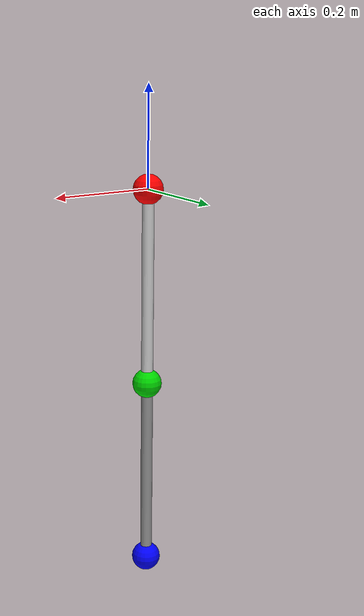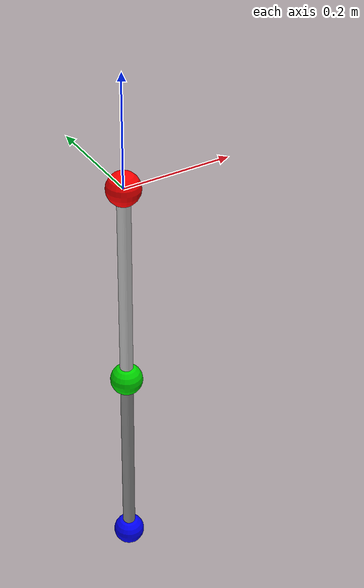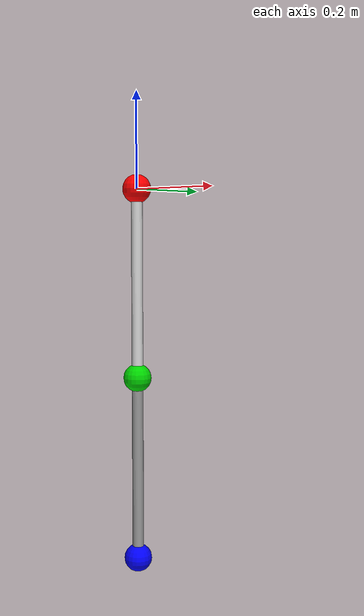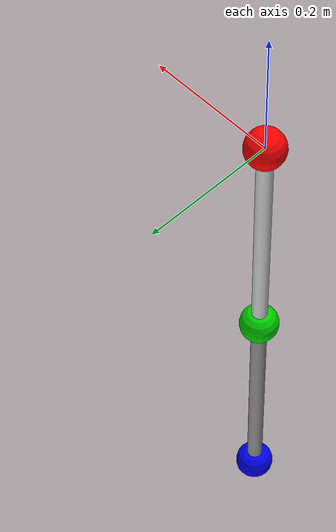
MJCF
<mujoco model="scene">
    <include file="pendulo.xml" />

    <visual>
        <headlight diffuse="0.6 0.6 0.6" ambient="0.3 0.3 0.3" specular="0 0 0" />
        <rgba haze="0.15 0.25 0.35 1" />
        <global azimuth="160" elevation="-20" />
    </visual>

    <asset>
        <texture type="skybox" builtin="gradient" rgb1="0.3 0.5 0.7" rgb2="0 0 0" width="512"
            height="3072" />
        <texture type="2d" name="groundplane" builtin="checker" mark="edge" rgb1="0.2 0.3 0.4"
            rgb2="0.1 0.2 0.3"
            markrgb="0.8 0.8 0.8" width="300" height="300" />
        <material name="groundplane" texture="groundplane" texuniform="true" texrepeat="5 5"
            reflectance="0.2" />
    </asset>

    <worldbody>
        <light pos="0 0 3.5" dir="0 0 -1" directional="true" />
        <geom name="floor" size="0 0 0.05" pos="0 0 0.5" type="plane" material="groundplane" />
    </worldbody>
</mujoco>

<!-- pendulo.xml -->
<mujoco model="pendulo_doble">

  <compiler angle="radian" autolimits="false"/>
  <option gravity="0 0 -9.81" timestep="0.002"/>

  <visual>
    <global offwidth="1280" offheight="720"/>
  </visual>

  <worldbody>

    <!-- Cámara centrada: ve desde el frente, el péndulo mide ~0.8m total -->
    <camera name="vista_frontal"
            pos="0 -1.8 -0.4"
            xyaxes="1 0 0 0 0 1"/>

    <!-- Punto de anclaje ROJO (joint central, fijo al mundo) -->
    <geom name="punto_rojo" type="sphere" size="0.03"
          pos="0 0 0" rgba="1 0 0 1"
          contype="0" conaffinity="0"/>

    <!-- ── Barra 1 ── -->
    <body name="barra1" pos="0 0 0">
      <joint name="joint_central" type="hinge" axis="0 1 0"
             pos="0 0 0" limited="false" damping="0.05"/>

      <geom name="cilindro1" type="cylinder" size="0.012 0.2"
            pos="0 0 -0.2" rgba="0.85 0.85 0.85 1"/>

      <!-- Punto VERDE en el joint intermedio -->
      <geom name="punto_verde" type="sphere" size="0.03"
            pos="0 0 -0.4" rgba="0 0.85 0 1"
            contype="0" conaffinity="0"/>

      <inertial pos="0 0 -0.2" mass="1.0"
                diaginertia="0.014 0.014 0.0002"/>

      <!-- ── Barra 2 ── -->
      <body name="barra2" pos="0 0 -0.4">
        <joint name="joint_intermedio" type="hinge" axis="0 1 0"
               pos="0 0 0" limited="false" damping="0.05"/>

        <geom name="cilindro2" type="cylinder" size="0.012 0.2"
              pos="0 0 -0.2" rgba="0.6 0.6 0.6 1"/>

        <!-- Punto AZUL en el extremo final -->
        <geom name="punto_azul" type="sphere" size="0.03"
              pos="0 0 -0.4" rgba="0 0 1 1"
              contype="0" conaffinity="0"/>

        <inertial pos="0 0 -0.2" mass="0.5"
                  diaginertia="0.007 0.007 0.0001"/>
      </body>
    </body>

  </worldbody>

  <!-- 90° = π/2 = 1.5708 rad en ambos joints -->
  <keyframe>
    <key name="inicio" qpos="1.5708 0.0"/>
  </keyframe>

</mujoco>
